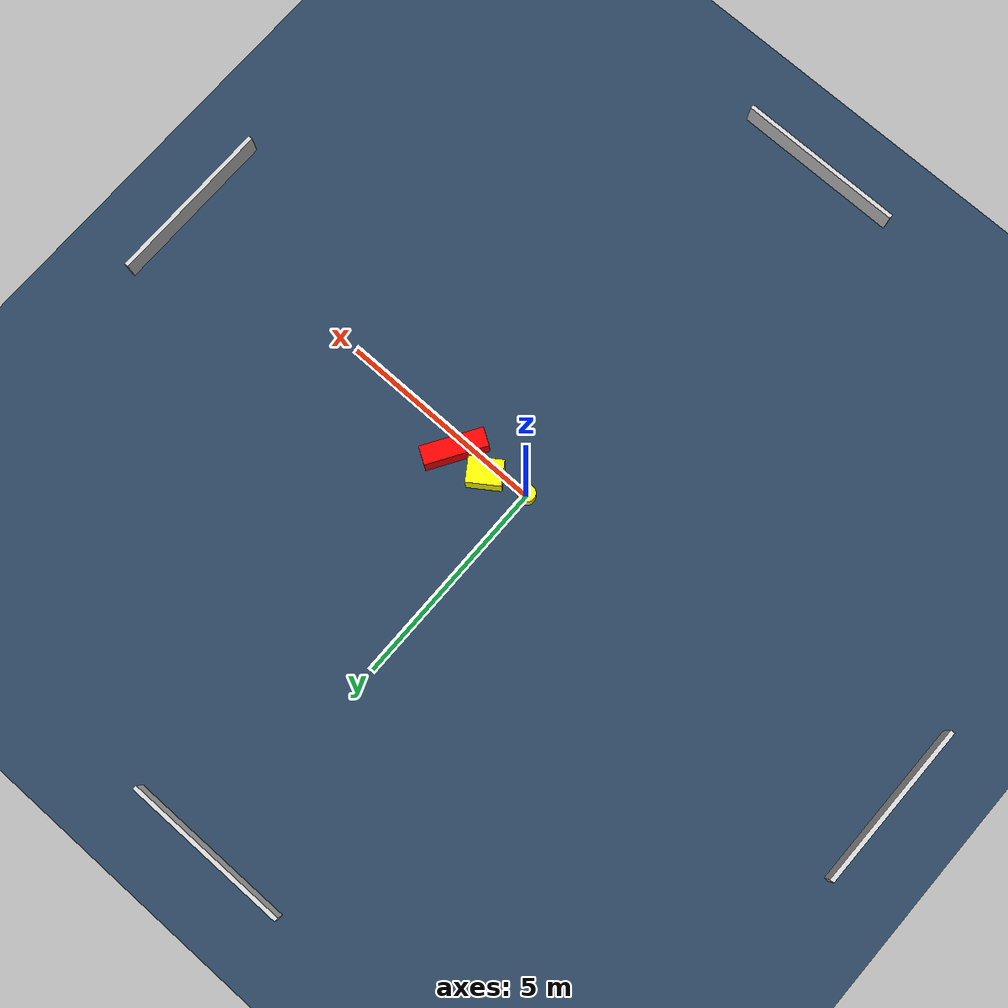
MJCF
<?xml version="1.0" ?>
<mujoco model="generated_environment">
  <option timestep="0.01" integrator="RK4" cone="elliptic"/>
  <default>
    <geom density="1"/>
  </default>
  <asset>
    <texture builtin="gradient" height="3072" name="skybox" rgb1="0.3 0.5 0.7" rgb2="0 0 0" type="skybox" width="512"/>
    <texture builtin="checker" height="300" name="groundplane" rgb1="0.2 0.3 0.4" rgb2="0.1 0.2 0.3" type="2d" width="300"/>
    <material name="groundplane" reflectance="0.2" texrepeat="5 5" texture="groundplane"/>
  </asset>
  <worldbody>
    <light dir="0 0 -1" directional="true" pos="0 0 1.5"/>
    <geom condim="3" friction="0.5 0.005 0.001" material="groundplane" name="floor" pos="0 0 0" size="0 0 0.05" type="plane"/>
    <body name="walls">
      <geom name="wall_1" condim="4" pos="-10.0 0.0 0.3" rgba="0.800000011920929 0.800000011920929 0.800000011920929 1.0" size="0.05 2.0 0.3" type="box"/>
      <geom name="wall_2" condim="4" pos="10.0 0.0 0.3" rgba="0.800000011920929 0.800000011920929 0.800000011920929 1.0" size="0.05 2.0 0.3" type="box"/>
      <geom name="wall_3" condim="4" pos="0.0 -10.0 0.3" rgba="0.800000011920929 0.800000011920929 0.800000011920929 1.0" size="2.0 0.05 0.3" type="box"/>
      <geom name="wall_4" condim="4" pos="0.0 10.0 0.3" rgba="0.800000011920929 0.800000011920929 0.800000011920929 1.0" size="2.0 0.05 0.3" type="box"/>
    </body>
    <body name="robot">
      <joint name="joint_x" type="slide" pos="0 0 0" axis="1 0 0"/>
      <joint name="joint_y" type="slide" pos="0 0 0" axis="0 1 0"/>
      <geom name="robot" type="cylinder" pos="0.0 0.0 0.2" size="0.2 0.2 0.0" mass="5.0" friction="1.0 0.005 0.0001" condim="4" rgba="1.0 1.0 0.0 1.0"/>
    </body>
    <body name="obstacle_1_movable">
      <geom name="obstacle_1_movable" condim="4" pos="0.9739655597363439 0.25850029350707027 0.3" euler="0 0 214.36184659217628" friction="0.0 0.005 0.001" rgba="1.0 1.0 0.0 1.0" size="0.3991287497012916 0.2944191752954814 0.3" type="box" mass="0.1"/>
      <joint type="free"/>
    </body>
    <body name="obstacle_2_static">
      <geom name="obstacle_2_static" condim="4" pos="1.8401360393322994 0.2892840659728012 0.3" euler="0 0 58.28840610891642" friction="0.0 0.005 0.001" rgba="1.0 0.0 0.0 1.0" size="0.732919038527182 0.218710650507699 0.3" type="box"/>
    </body>
  </worldbody>
  <actuator>
    <motor name="actuator_x" joint="joint_x" gear="1" ctrlrange="-1 1"/>
    <motor name="actuator_y" joint="joint_y" gear="1" ctrlrange="-1 1"/>
  </actuator>
</mujoco>
